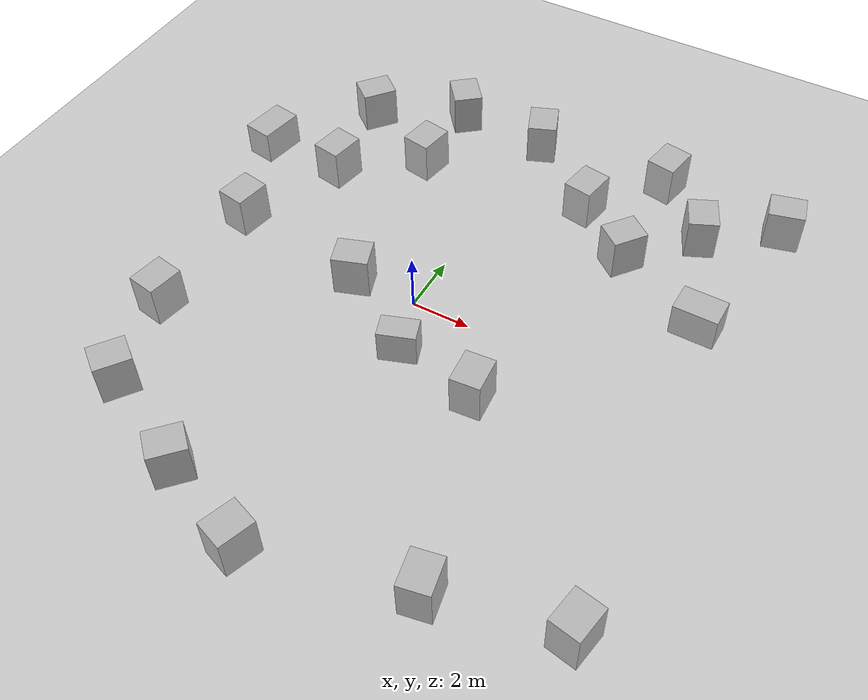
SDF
<sdf version="1.6">
 <world name="default">
  <light name="sun" type="directional">
   <pose>0 0 10 0 -0 0</pose>
   <diffuse>0.8 0.8 0.8 1</diffuse>
   <specular>0.2 0.2 0.2 1</specular>
   <attenuation>
    <range>1000</range>
    <constant>0.9</constant>
    <linear>0.01</linear>
    <quadratic>0.001</quadratic>
   </attenuation>
   <direction>-0.5 0.1 -0.9</direction>
  </light>
  <model name="ground_plane">
   <static>1</static>
   <link name="link">
    <collision name="collision">
     <geometry><plane><normal>0 0 1</normal><size>100 100</size></plane></geometry>
     <surface>
      <contact><collide_bitmask>65535</collide_bitmask></contact>
      <friction><ode><mu>100</mu><mu2>50</mu2></ode></friction>
     </surface>
    </collision>
    <visual name="visual">
     <cast_shadows>0</cast_shadows>
     <geometry><plane><normal>0 0 1</normal><size>100 100</size></plane></geometry>
     <material>
      <script><uri>file://media/materials/scripts/gazebo.material</uri><name>Gazebo/Grey</name></script>
     </material>
    </visual>
   </link>
  </model>
  <physics name="default_physics" default="0" type="ode">
   <ode>
    <solver>
     <type>quick</type>
     <iters>10</iters>
     <sor>1.3</sor>
     <use_dynamic_moi_rescaling>0</use_dynamic_moi_rescaling>
    </solver>
    <constraints>
     <cfm>0</cfm>
     <erp>0.2</erp>
     <contact_max_correcting_vel>100</contact_max_correcting_vel>
     <contact_surface_layer>0.001</contact_surface_layer>
    </constraints>
   </ode>
   <max_step_size>0.004</max_step_size>
   <real_time_factor>1</real_time_factor>
   <real_time_update_rate>250</real_time_update_rate>
  </physics>
  <gravity>0 0 -9.8066</gravity>
  <magnetic_field>6e-06 2.3e-05 -4.2e-05</magnetic_field>
  <atmosphere type="adiabatic"/>
  <scene><ambient>0.4 0.4 0.4 1</ambient><background>0.7 0.7 0.7 1</background><shadows>1</shadows></scene>
  <spherical_coordinates>
   <surface_model>EARTH_WGS84</surface_model>
   <latitude_deg>0</latitude_deg>
   <longitude_deg>0</longitude_deg>
   <elevation>0</elevation>
   <heading_deg>0</heading_deg>
  </spherical_coordinates>
  <model name="Big box 4">
   <pose>0.644292 -1.94164 0.599459 0.009044 1.56999 0.345773</pose>
   <static>0</static>
   <link name="link">
    <inertial>
     <mass>40</mass>
     <inertia><ixx>1</ixx><ixy>0</ixy><ixz>0</ixz><iyy>1</iyy><iyz>0</iyz><izz>1</izz></inertia>
    </inertial>
    <collision name="collision">
     <geometry><box><size>1.2 0.8 1.25</size></box></geometry>
     <surface><contact><ode><max_vel>0.1</max_vel><min_depth>0.001</min_depth></ode></contact></surface>
    </collision>
    <visual name="visual">
     <geometry><mesh><uri>model://big_box4/meshes/big_box.dae</uri></mesh></geometry>
    </visual>
   </link>
  </model>
  <model name="Big box_0">
   <pose>-2.15588 -0.126975 0.749494 1.5e-05 0.000861 0.333429</pose>
   <static>0</static>
   <link name="link">
    <inertial>
     <mass>40</mass>
     <inertia><ixx>1</ixx><ixy>0</ixy><ixz>0</ixz><iyy>1</iyy><iyz>0</iyz><izz>1</izz></inertia>
    </inertial>
    <collision name="collision">
     <geometry><box><size>1.2 0.8 1.5</size></box></geometry>
     <surface><contact><ode><max_vel>0.1</max_vel><min_depth>0.001</min_depth></ode></contact></surface>
    </collision>
    <visual name="visual"><geometry><mesh><uri>model://big_box/meshes/big_box.dae</uri></mesh></geometry></visual>
   </link>
  </model>
  <model name="Big box_1_clone">
   <pose>5.06513 4.95273 0.749496 2.2e-05 0.000877 0.90548</pose>
   <static>0</static>
   <link name="link">
    <inertial>
     <mass>40</mass>
     <inertia><ixx>1</ixx><ixy>0</ixy><ixz>0</ixz><iyy>1</iyy><iyz>0</iyz><izz>1</izz></inertia>
    </inertial>
    <collision name="collision">
     <geometry><box><size>1.2 0.8 1.5</size></box></geometry>
     <surface><contact><ode><max_vel>0.1</max_vel><min_depth>0.001</min_depth></ode></contact></surface>
    </collision>
    <visual name="visual"><geometry><mesh><uri>model://big_box/meshes/big_box.dae</uri></mesh></geometry></visual>
   </link>
  </model>
  <model name="Big box_1_clone_0">
   <pose>8.37251 3.38408 0.599421 3.09813 1.57016 3.08568</pose>
   <static>0</static>
   <link name="link">
    <inertial>
     <mass>40</mass>
     <inertia><ixx>1</ixx><ixy>0</ixy><ixz>0</ixz><iyy>1</iyy><iyz>0</iyz><izz>1</izz></inertia>
    </inertial>
    <collision name="collision">
     <geometry><box><size>1.2 0.8 1.5</size></box></geometry>
     <surface><contact><ode><max_vel>0.1</max_vel><min_depth>0.001</min_depth></ode></contact></surface>
    </collision>
    <visual name="visual"><geometry><mesh><uri>model://big_box/meshes/big_box.dae</uri></mesh></geometry></visual>
   </link>
  </model>
  <model name="Big box_clone">
   <pose>2.98845 6.56017 0.749489 -2.4e-05 -0.00085 1.39841</pose>
   <static>0</static>
   <link name="link">
    <inertial>
     <mass>40</mass>
     <inertia><ixx>1</ixx><ixy>0</ixy><ixz>0</ixz><iyy>1</iyy><iyz>0</iyz><izz>1</izz></inertia>
    </inertial>
    <collision name="collision">
     <geometry><box><size>1.2 0.8 1.5</size></box></geometry>
     <surface><contact><ode><max_vel>0.1</max_vel><min_depth>0.001</min_depth></ode></contact></surface>
    </collision>
    <visual name="visual"><geometry><mesh><uri>model://big_box/meshes/big_box.dae</uri></mesh></geometry></visual>
   </link>
  </model>
  <model name="Big box_clone_0">
   <pose>-3.01124 6.00354 0.7494 2.3e-05 -0.00083 1.39801</pose>
   <static>0</static>
   <link name="link">
    <inertial>
     <mass>40</mass>
     <inertia><ixx>1</ixx><ixy>0</ixy><ixz>0</ixz><iyy>1</iyy><iyz>0</iyz><izz>1</izz></inertia>
    </inertial>
    <collision name="collision">
     <geometry><box><size>1.2 0.8 1.5</size></box></geometry>
     <surface><contact><ode><max_vel>0.1</max_vel><min_depth>0.001</min_depth></ode></contact></surface>
    </collision>
    <visual name="visual"><geometry><mesh><uri>model://big_box/meshes/big_box.dae</uri></mesh></geometry></visual>
   </link>
  </model>
  <model name="Big box_clone_1">
   <pose>-5.53592 4.12743 0.749419 -5e-06 -0.000863 1.39767</pose>
   <static>0</static>
   <link name="link">
    <inertial>
     <mass>40</mass>
     <inertia><ixx>1</ixx><ixy>0</ixy><ixz>0</ixz><iyy>1</iyy><iyz>0</iyz><izz>1</izz></inertia>
    </inertial>
    <collision name="collision">
     <geometry><box><size>1.2 0.8 1.5</size></box></geometry>
     <surface><contact><ode><max_vel>0.1</max_vel><min_depth>0.001</min_depth></ode></contact></surface>
    </collision>
    <visual name="visual"><geometry><mesh><uri>model://big_box/meshes/big_box.dae</uri></mesh></geometry></visual>
   </link>
  </model>
  <model name="Big box_clone_2">
   <pose>-7.01073 0.589085 0.749494 9e-06 -0.000855 1.39724</pose>
   <static>0</static>
   <link name="link">
    <inertial>
     <mass>40</mass>
     <inertia><ixx>1</ixx><ixy>0</ixy><ixz>0</ixz><iyy>1</iyy><iyz>0</iyz><izz>1</izz></inertia>
    </inertial>
    <collision name="collision">
     <geometry><box><size>1.2 0.8 1.5</size></box></geometry>
     <surface><contact><ode><max_vel>0.1</max_vel><min_depth>0.001</min_depth></ode></contact></surface>
    </collision>
    <visual name="visual"><geometry><mesh><uri>model://big_box/meshes/big_box.dae</uri></mesh></geometry></visual>
   </link>
  </model>
  <model name="Big box_clone_3">
   <pose>-7.01066 -3.99667 0.749412 1e-06 -0.000845 1.39712</pose>
   <static>0</static>
   <link name="link">
    <inertial>
     <mass>40</mass>
     <inertia><ixx>1</ixx><ixy>0</ixy><ixz>0</ixz><iyy>1</iyy><iyz>0</iyz><izz>1</izz></inertia>
    </inertial>
    <collision name="collision">
     <geometry><box><size>1.2 0.8 1.5</size></box></geometry>
     <surface><contact><ode><max_vel>0.1</max_vel><min_depth>0.001</min_depth></ode></contact></surface>
    </collision>
    <visual name="visual"><geometry><mesh><uri>model://big_box/meshes/big_box.dae</uri></mesh></geometry></visual>
   </link>
  </model>
  <model name="Big box_clone_4">
   <pose>-2.72623 -8.84789 0.749492 3.6e-05 -0.000861 0.820263</pose>
   <static>0</static>
   <link name="link">
    <inertial>
     <mass>40</mass>
     <inertia><ixx>1</ixx><ixy>0</ixy><ixz>0</ixz><iyy>1</iyy><iyz>0</iyz><izz>1</izz></inertia>
    </inertial>
    <collision name="collision">
     <geometry><box><size>1.2 0.8 1.5</size></box></geometry>
     <surface><contact><ode><max_vel>0.1</max_vel><min_depth>0.001</min_depth></ode></contact></surface>
    </collision>
    <visual name="visual"><geometry><mesh><uri>model://big_box/meshes/big_box.dae</uri></mesh></geometry></visual>
   </link>
  </model>
  <model name="Big box_clone_5">
   <pose>-6.15169 -7.1826 0.749487 3e-06 -0.000845 0.93624</pose>
   <static>0</static>
   <link name="link">
    <inertial>
     <mass>40</mass>
     <inertia><ixx>1</ixx><ixy>0</ixy><ixz>0</ixz><iyy>1</iyy><iyz>0</iyz><izz>1</izz></inertia>
    </inertial>
    <collision name="collision">
     <geometry><box><size>1.2 0.8 1.5</size></box></geometry>
     <surface><contact><ode><max_vel>0.1</max_vel><min_depth>0.001</min_depth></ode></contact></surface>
    </collision>
    <visual name="visual"><geometry><mesh><uri>model://big_box/meshes/big_box.dae</uri></mesh></geometry></visual>
   </link>
  </model>
  <model name="Big box_clone_6">
   <pose>0.362101 -10.1141 0.749478 3e-06 -0.000829 1.23241</pose>
   <static>0</static>
   <link name="link">
    <inertial>
     <mass>40</mass>
     <inertia><ixx>1</ixx><ixy>0</ixy><ixz>0</ixz><iyy>1</iyy><iyz>0</iyz><izz>1</izz></inertia>
    </inertial>
    <collision name="collision">
     <geometry><box><size>1.2 0.8 1.5</size></box></geometry>
     <surface><contact><ode><max_vel>0.1</max_vel><min_depth>0.001</min_depth></ode></contact></surface>
    </collision>
    <visual name="visual"><geometry><mesh><uri>model://big_box/meshes/big_box.dae</uri></mesh></geometry></visual>
   </link>
  </model>
  <model name="Big box_clone_7">
   <pose>5.53392 -8.86467 0.749491 4e-06 -0.00086 1.75797</pose>
   <static>0</static>
   <link name="link">
    <inertial>
     <mass>40</mass>
     <inertia><ixx>1</ixx><ixy>0</ixy><ixz>0</ixz><iyy>1</iyy><iyz>0</iyz><izz>1</izz></inertia>
    </inertial>
    <collision name="collision">
     <geometry><box><size>1.2 0.8 1.5</size></box></geometry>
     <surface><contact><ode><max_vel>0.1</max_vel><min_depth>0.001</min_depth></ode></contact></surface>
    </collision>
    <visual name="visual"><geometry><mesh><uri>model://big_box/meshes/big_box.dae</uri></mesh></geometry></visual>
   </link>
  </model>
  <model name="Big box_clone_8">
   <pose>0.228211 8.78441 0.749495 -3e-06 -0.000869 1.94842</pose>
   <static>0</static>
   <link name="link">
    <inertial>
     <mass>40</mass>
     <inertia><ixx>1</ixx><ixy>0</ixy><ixz>0</ixz><iyy>1</iyy><iyz>0</iyz><izz>1</izz></inertia>
    </inertial>
    <collision name="collision">
     <geometry><box><size>1.2 0.8 1.5</size></box></geometry>
     <surface><contact><ode><max_vel>0.1</max_vel><min_depth>0.001</min_depth></ode></contact></surface>
    </collision>
    <visual name="visual"><geometry><mesh><uri>model://big_box/meshes/big_box.dae</uri></mesh></geometry></visual>
   </link>
  </model>
  <model name="Big box_clone_9">
   <pose>-3.02916 8.90992 0.749496 -2.8e-05 -0.000874 2.25061</pose>
   <static>0</static>
   <link name="link">
    <inertial>
     <mass>40</mass>
     <inertia><ixx>1</ixx><ixy>0</ixy><ixz>0</ixz><iyy>1</iyy><iyz>0</iyz><izz>1</izz></inertia>
    </inertial>
    <collision name="collision">
     <geometry><box><size>1.2 0.8 1.5</size></box></geometry>
     <surface><contact><ode><max_vel>0.1</max_vel><min_depth>0.001</min_depth></ode></contact></surface>
    </collision>
    <visual name="visual"><geometry><mesh><uri>model://big_box/meshes/big_box.dae</uri></mesh></geometry></visual>
   </link>
  </model>
  <model name="Big box_clone_10">
   <pose>-6.00714 7.4547 0.749469 -1.1e-05 -0.000851 0.888559</pose>
   <static>0</static>
   <link name="link">
    <inertial>
     <mass>40</mass>
     <inertia><ixx>1</ixx><ixy>0</ixy><ixz>0</ixz><iyy>1</iyy><iyz>0</iyz><izz>1</izz></inertia>
    </inertial>
    <collision name="collision">
     <geometry><box><size>1.2 0.8 1.5</size></box></geometry>
     <surface><contact><ode><max_vel>0.1</max_vel><min_depth>0.001</min_depth></ode></contact></surface>
    </collision>
    <visual name="visual"><geometry><mesh><uri>model://big_box/meshes/big_box.dae</uri></mesh></geometry></visual>
   </link>
  </model>
  <model name="Big box_clone_11">
   <pose>-8.46466 4.2721 0.599474 3.10104 -1.57007 -1.69465</pose>
   <static>0</static>
   <link name="link">
    <inertial>
     <mass>40</mass>
     <inertia><ixx>1</ixx><ixy>0</ixy><ixz>0</ixz><iyy>1</iyy><iyz>0</iyz><izz>1</izz></inertia>
    </inertial>
    <collision name="collision">
     <geometry><box><size>1.2 0.8 1.5</size></box></geometry>
     <surface><contact><ode><max_vel>0.1</max_vel><min_depth>0.001</min_depth></ode></contact></surface>
    </collision>
    <visual name="visual"><geometry><mesh><uri>model://big_box/meshes/big_box.dae</uri></mesh></geometry></visual>
   </link>
  </model>
  <model name="Big box_clone_12">
   <pose>7.00475 7.00491 0.749464 -3.3e-05 -0.000843 1.99251</pose>
   <static>0</static>
   <link name="link">
    <inertial>
     <mass>40</mass>
     <inertia><ixx>1</ixx><ixy>0</ixy><ixz>0</ixz><iyy>1</iyy><iyz>0</iyz><izz>1</izz></inertia>
    </inertial>
    <collision name="collision">
     <geometry><box><size>1.2 0.8 1.5</size></box></geometry>
     <surface><contact><ode><max_vel>0.1</max_vel><min_depth>0.001</min_depth></ode></contact></surface>
    </collision>
    <visual name="visual"><geometry><mesh><uri>model://big_box/meshes/big_box.dae</uri></mesh></geometry></visual>
   </link>
  </model>
  <model name="Big box_clone_13">
   <pose>4.9916 9.00258 0.749495 3.5e-05 -0.000866 1.39378</pose>
   <static>0</static>
   <link name="link">
    <inertial>
     <mass>40</mass>
     <inertia><ixx>1</ixx><ixy>0</ixy><ixz>0</ixz><iyy>1</iyy><iyz>0</iyz><izz>1</izz></inertia>
    </inertial>
    <collision name="collision">
     <geometry><box><size>1.2 0.8 1.5</size></box></geometry>
     <surface><contact><ode><max_vel>0.1</max_vel><min_depth>0.001</min_depth></ode></contact></surface>
    </collision>
    <visual name="visual"><geometry><mesh><uri>model://big_box/meshes/big_box.dae</uri></mesh></geometry></visual>
   </link>
  </model>
  <model name="Big box_clone_14">
   <pose>9.36771 8.59638 0.749489 0.001251 -8e-06 0.247269</pose>
   <static>0</static>
   <link name="link">
    <inertial>
     <mass>40</mass>
     <inertia><ixx>1</ixx><ixy>0</ixy><ixz>0</ixz><iyy>1</iyy><iyz>0</iyz><izz>1</izz></inertia>
    </inertial>
    <collision name="collision">
     <geometry><box><size>1.2 0.8 1.5</size></box></geometry>
     <surface><contact><ode><max_vel>0.1</max_vel><min_depth>0.001</min_depth></ode></contact></surface>
    </collision>
    <visual name="visual"><geometry><mesh><uri>model://big_box/meshes/big_box.dae</uri></mesh></geometry></visual>
   </link>
  </model>
  <model name="Big box_clone_15">
   <pose>9.52672 -7.99758 0.749476 1e-05 -0.000826 1.39255</pose>
   <static>0</static>
   <link name="link">
    <inertial>
     <mass>40</mass>
     <inertia><ixx>1</ixx><ixy>0</ixy><ixz>0</ixz><iyy>1</iyy><iyz>0</iyz><izz>1</izz></inertia>
    </inertial>
    <collision name="collision">
     <geometry><box><size>1.2 0.8 1.5</size></box></geometry>
     <surface><contact><ode><max_vel>0.1</max_vel><min_depth>0.001</min_depth></ode></contact></surface>
    </collision>
    <visual name="visual"><geometry><mesh><uri>model://big_box/meshes/big_box.dae</uri></mesh></geometry></visual>
   </link>
  </model>
  <model name="Big box_clone_16">
   <pose>3.54564 -2.507 0.749405 3e-06 -0.000817 1.65056</pose>
   <static>0</static>
   <link name="link">
    <inertial>
     <mass>40</mass>
     <inertia><ixx>1</ixx><ixy>0</ixy><ixz>0</ixz><iyy>1</iyy><iyz>0</iyz><izz>1</izz></inertia>
    </inertial>
    <collision name="collision">
     <geometry><box><size>1.2 0.8 1.5</size></box></geometry>
     <surface><contact><ode><max_vel>0.1</max_vel><min_depth>0.001</min_depth></ode></contact></surface>
    </collision>
    <visual name="visual"><geometry><mesh><uri>model://big_box/meshes/big_box.dae</uri></mesh></geometry></visual>
   </link>
  </model>
 </world>
</sdf>
